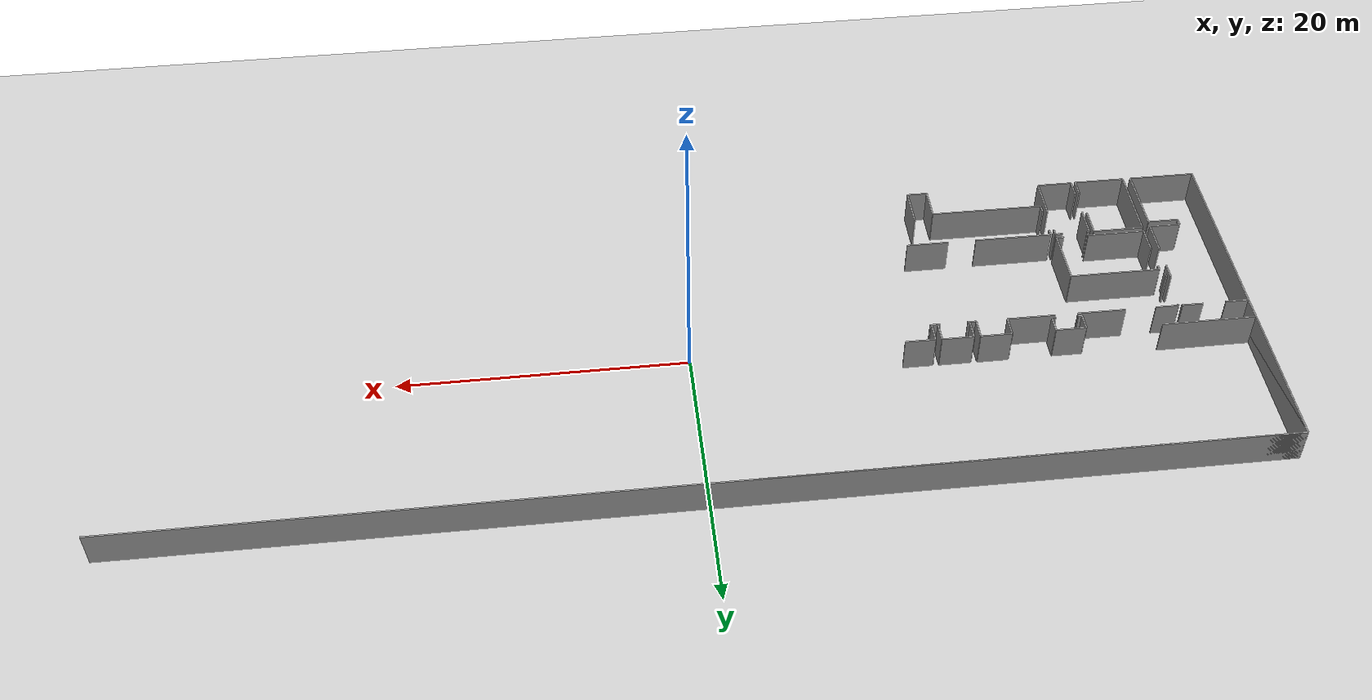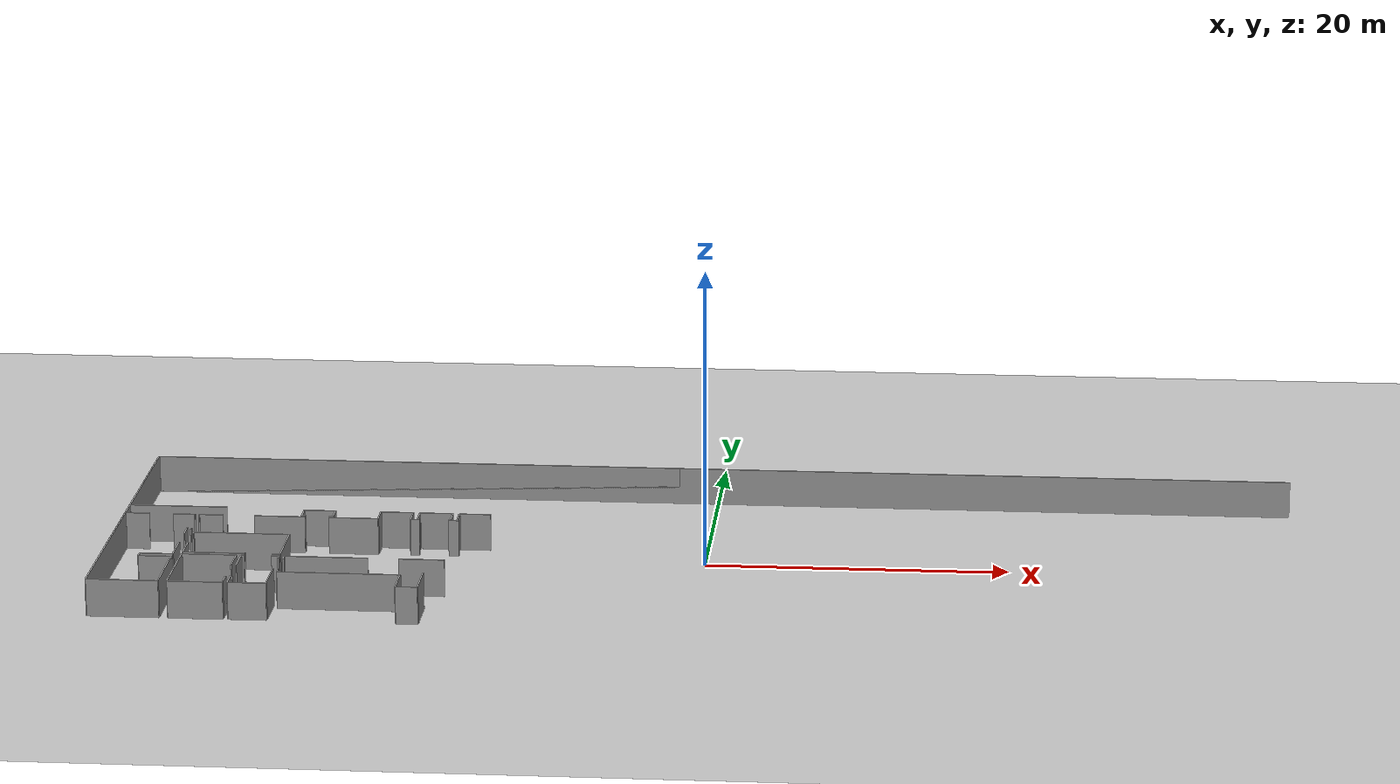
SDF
<sdf version="1.6">
 <world name="default">
  <model name="ground_plane">
   <static>1</static>
   <link name="link">
    <collision name="collision">
     <geometry><plane><normal>0 0 1</normal><size>100 100</size></plane></geometry>
     <surface><friction><ode><mu>100</mu><mu2>50</mu2></ode></friction></surface>
    </collision>
    <visual name="visual">
     <cast_shadows>0</cast_shadows>
     <geometry><plane><normal>0 0 1</normal><size>100 100</size></plane></geometry>
     <material>
      <script><uri>file://media/materials/scripts/gazebo.material</uri><name>Gazebo/Grey</name></script>
     </material>
    </visual>
   </link>
  </model>
  <model name="0510030965_A-40">
   <static>1</static>
   <link name="Wall_0">
    <collision name="Wall_0_Collision">
     <geometry><box><size>10.6242301881 0.1 2.5</size></box></geometry>
     <pose>5.31211509403 0 1.25 0 0 0</pose>
    </collision>
    <visual name="Wall_0_Visual">
     <pose>5.31211509403 0 1.25 0 0 0</pose>
     <geometry><box><size>10.6242301881 0.1 2.5</size></box></geometry>
     <material>
      <script><uri>file://media/materials/scripts/gazebo.material</uri><name>Gazebo/Grey</name></script>
      <ambient>1 1 1 1</ambient>
     </material>
    </visual>
    <pose>0.0 -10.6242301881 0 0 0 1.57079632679</pose>
   </link>
   <link name="Wall_1">
    <collision name="Wall_1_Collision">
     <geometry><box><size>35.9684075527 0.1 2.5</size></box></geometry>
     <pose>17.9842037764 0 1.25 0 0 0</pose>
    </collision>
    <visual name="Wall_1_Visual">
     <pose>17.9842037764 0 1.25 0 0 0</pose>
     <geometry><box><size>35.9684075527 0.1 2.5</size></box></geometry>
     <material>
      <script><uri>file://media/materials/scripts/gazebo.material</uri><name>Gazebo/Grey</name></script>
      <ambient>1 1 1 1</ambient>
     </material>
    </visual>
   </link>
   <link name="Wall_5">
    <collision name="Wall_5_Collision">
     <geometry><box><size>6.55112685435 0.1 2.5</size></box></geometry>
     <pose>3.27556342718 0 1.25 0 0 0</pose>
    </collision>
    <visual name="Wall_5_Visual">
     <pose>3.27556342718 0 1.25 0 0 0</pose>
     <geometry><box><size>6.55112685435 0.1 2.5</size></box></geometry>
     <material>
      <script><uri>file://media/materials/scripts/gazebo.material</uri><name>Gazebo/Grey</name></script>
      <ambient>1 1 1 1</ambient>
     </material>
    </visual>
    <pose>6.55111551306 -10.6120401762 0 0 0 -3.13973190213</pose>
   </link>
   <link name="Wall_6">
    <collision name="Wall_6_Collision">
     <geometry><box><size>4.66648889566 0.1 2.5</size></box></geometry>
     <pose>2.33324444783 0 1.25 0 0 0</pose>
    </collision>
    <visual name="Wall_6_Visual">
     <pose>2.33324444783 0 1.25 0 0 0</pose>
     <geometry><box><size>4.66648889566 0.1 2.5</size></box></geometry>
     <material>
      <script><uri>file://media/materials/scripts/gazebo.material</uri><name>Gazebo/Grey</name></script>
      <ambient>1 1 1 1</ambient>
     </material>
    </visual>
    <pose>4.66826660572 -25.6908308255 0 0 0 3.14159265359</pose>
   </link>
   <link name="Wall_7">
    <collision name="Wall_7_Collision">
     <geometry><box><size>13.4218378982 0.1 2.5</size></box></geometry>
     <pose>6.71091894912 0 1.25 0 0 0</pose>
    </collision>
    <visual name="Wall_7_Visual">
     <pose>6.71091894912 0 1.25 0 0 0</pose>
     <geometry><box><size>13.4218378982 0.1 2.5</size></box></geometry>
     <material>
      <script><uri>file://media/materials/scripts/gazebo.material</uri><name>Gazebo/Grey</name></script>
      <ambient>1 1 1 1</ambient>
     </material>
    </visual>
    <pose>0.00177771005549 -25.6908308255 0 0 0 1.57079632679</pose>
   </link>
   <link name="Wall_8">
    <collision name="Wall_8_Collision">
     <geometry><box><size>1.61250999962 0.1 2.5</size></box></geometry>
     <pose>0.80625499981 0 1.25 0 0 0</pose>
    </collision>
    <visual name="Wall_8_Visual">
     <pose>0.80625499981 0 1.25 0 0 0</pose>
     <geometry><box><size>1.61250999962 0.1 2.5</size></box></geometry>
     <material>
      <script><uri>file://media/materials/scripts/gazebo.material</uri><name>Gazebo/Grey</name></script>
      <ambient>1 1 1 1</ambient>
     </material>
    </visual>
    <pose>0.00177771005549 -12.2689929273 0 0 0 0.0</pose>
   </link>
   <link name="Wall_9">
    <collision name="Wall_9_Collision">
     <geometry><box><size>1.44921463309 0.1 2.5</size></box></geometry>
     <pose>0.724607316547 0 1.25 0 0 0</pose>
    </collision>
    <visual name="Wall_9_Visual">
     <pose>0.724607316547 0 1.25 0 0 0</pose>
     <geometry><box><size>1.44921463309 0.1 2.5</size></box></geometry>
     <material>
      <script><uri>file://media/materials/scripts/gazebo.material</uri><name>Gazebo/Grey</name></script>
      <ambient>1 1 1 1</ambient>
     </material>
    </visual>
    <pose>3.21714728328 -12.2689929273 0 0 0 0.0</pose>
   </link>
   <link name="Wall_10">
    <collision name="Wall_10_Collision">
     <geometry><box><size>0.0816476832629 0.1 2.5</size></box></geometry>
     <pose>0.0408238416314 0 1.25 0 0 0</pose>
    </collision>
    <visual name="Wall_10_Visual">
     <pose>0.0408238416314 0 1.25 0 0 0</pose>
     <geometry><box><size>0.0816476832629 0.1 2.5</size></box></geometry>
     <material>
      <script><uri>file://media/materials/scripts/gazebo.material</uri><name>Gazebo/Grey</name></script>
      <ambient>1 1 1 1</ambient>
     </material>
    </visual>
    <pose>4.66636191637 -12.2689929273 0 0 0 -1.57079632679</pose>
   </link>
   <link name="Wall_11">
    <collision name="Wall_11_Collision">
     <geometry><box><size>1.176082181 0.1 2.5</size></box></geometry>
     <pose>0.588041090498 0 1.25 0 0 0</pose>
    </collision>
    <visual name="Wall_11_Visual">
     <pose>0.588041090498 0 1.25 0 0 0</pose>
     <geometry><box><size>1.176082181 0.1 2.5</size></box></geometry>
     <material>
      <script><uri>file://media/materials/scripts/gazebo.material</uri><name>Gazebo/Grey</name></script>
      <ambient>1 1 1 1</ambient>
     </material>
    </visual>
    <pose>4.66636191637 -15.1072340101 0 0 0 -1.57079632679</pose>
   </link>
   <link name="Wall_12">
    <collision name="Wall_12_Collision">
     <geometry><box><size>2.33718080581 0.1 2.5</size></box></geometry>
     <pose>1.16859040291 0 1.25 0 0 0</pose>
    </collision>
    <visual name="Wall_12_Visual">
     <pose>1.16859040291 0 1.25 0 0 0</pose>
     <geometry><box><size>2.33718080581 0.1 2.5</size></box></geometry>
     <material>
      <script><uri>file://media/materials/scripts/gazebo.material</uri><name>Gazebo/Grey</name></script>
      <ambient>1 1 1 1</ambient>
     </material>
    </visual>
    <pose>4.66636191637 -18.0428682082 0 0 0 -1.57079632679</pose>
   </link>
   <link name="Wall_13">
    <collision name="Wall_13_Collision">
     <geometry><box><size>2.16448897185 0.1 2.5</size></box></geometry>
     <pose>1.08224448592 0 1.25 0 0 0</pose>
    </collision>
    <visual name="Wall_13_Visual">
     <pose>1.08224448592 0 1.25 0 0 0</pose>
     <geometry><box><size>2.16448897185 0.1 2.5</size></box></geometry>
     <material>
      <script><uri>file://media/materials/scripts/gazebo.material</uri><name>Gazebo/Grey</name></script>
      <ambient>1 1 1 1</ambient>
     </material>
    </visual>
    <pose>4.66636191637 -20.380049014 0 0 0 3.14159265359</pose>
   </link>
   <link name="Wall_14">
    <collision name="Wall_14_Collision">
     <geometry><box><size>0.501060277069 0.1 2.5</size></box></geometry>
     <pose>0.250530138534 0 1.25 0 0 0</pose>
    </collision>
    <visual name="Wall_14_Visual">
     <pose>0.250530138534 0 1.25 0 0 0</pose>
     <geometry><box><size>0.501060277069 0.1 2.5</size></box></geometry>
     <material>
      <script><uri>file://media/materials/scripts/gazebo.material</uri><name>Gazebo/Grey</name></script>
      <ambient>1 1 1 1</ambient>
     </material>
    </visual>
    <pose>2.50187294452 -20.380049014 0 0 0 -1.57079632679</pose>
   </link>
   <link name="Wall_15">
    <collision name="Wall_15_Collision">
     <geometry><box><size>2.14569603698 0.1 2.5</size></box></geometry>
     <pose>1.07284801849 0 1.25 0 0 0</pose>
    </collision>
    <visual name="Wall_15_Visual">
     <pose>1.07284801849 0 1.25 0 0 0</pose>
     <geometry><box><size>2.14569603698 0.1 2.5</size></box></geometry>
     <material>
      <script><uri>file://media/materials/scripts/gazebo.material</uri><name>Gazebo/Grey</name></script>
      <ambient>1 1 1 1</ambient>
     </material>
    </visual>
    <pose>2.50187294452 -20.8811092911 0 0 0 0.0</pose>
   </link>
   <link name="Wall_16">
    <collision name="Wall_16_Collision">
     <geometry><box><size>4.80976606815 0.1 2.5</size></box></geometry>
     <pose>2.40488303407 0 1.25 0 0 0</pose>
    </collision>
    <visual name="Wall_16_Visual">
     <pose>2.40488303407 0 1.25 0 0 0</pose>
     <geometry><box><size>4.80976606815 0.1 2.5</size></box></geometry>
     <material>
      <script><uri>file://media/materials/scripts/gazebo.material</uri><name>Gazebo/Grey</name></script>
      <ambient>1 1 1 1</ambient>
     </material>
    </visual>
    <pose>4.6475689815 -20.8811092911 0 0 0 -1.56649306385</pose>
   </link>
   <link name="Wall_17">
    <collision name="Wall_17_Collision">
     <geometry><box><size>0.520615087679 0.1 2.5</size></box></geometry>
     <pose>0.26030754384 0 1.25 0 0 0</pose>
    </collision>
    <visual name="Wall_17_Visual">
     <pose>0.26030754384 0 1.25 0 0 0</pose>
     <geometry><box><size>0.520615087679 0.1 2.5</size></box></geometry>
     <material>
      <script><uri>file://media/materials/scripts/gazebo.material</uri><name>Gazebo/Grey</name></script>
      <ambient>1 1 1 1</ambient>
     </material>
    </visual>
    <pose>11.620128757 -19.9502241184 0 0 0 3.14159265359</pose>
   </link>
   <link name="Wall_18">
    <collision name="Wall_18_Collision">
     <geometry><box><size>4.08136832883 0.1 2.5</size></box></geometry>
     <pose>2.04068416441 0 1.25 0 0 0</pose>
    </collision>
    <visual name="Wall_18_Visual">
     <pose>2.04068416441 0 1.25 0 0 0</pose>
     <geometry><box><size>4.08136832883 0.1 2.5</size></box></geometry>
     <material>
      <script><uri>file://media/materials/scripts/gazebo.material</uri><name>Gazebo/Grey</name></script>
      <ambient>1 1 1 1</ambient>
     </material>
    </visual>
    <pose>9.3345015428 -19.9502241184 0 0 0 3.14159265359</pose>
   </link>
   <link name="Wall_19">
    <collision name="Wall_19_Collision">
     <geometry><box><size>1.89656267063 0.1 2.5</size></box></geometry>
     <pose>0.948281335314 0 1.25 0 0 0</pose>
    </collision>
    <visual name="Wall_19_Visual">
     <pose>0.948281335314 0 1.25 0 0 0</pose>
     <geometry><box><size>1.89656267063 0.1 2.5</size></box></geometry>
     <material>
      <script><uri>file://media/materials/scripts/gazebo.material</uri><name>Gazebo/Grey</name></script>
      <ambient>1 1 1 1</ambient>
     </material>
    </visual>
    <pose>5.25313321397 -19.9502241184 0 0 0 1.57079632679</pose>
   </link>
   <link name="Wall_20">
    <collision name="Wall_20_Collision">
     <geometry><box><size>0.358081596892 0.1 2.5</size></box></geometry>
     <pose>0.179040798446 0 1.25 0 0 0</pose>
    </collision>
    <visual name="Wall_20_Visual">
     <pose>0.179040798446 0 1.25 0 0 0</pose>
     <geometry><box><size>0.358081596892 0.1 2.5</size></box></geometry>
     <material>
      <script><uri>file://media/materials/scripts/gazebo.material</uri><name>Gazebo/Grey</name></script>
      <ambient>1 1 1 1</ambient>
     </material>
    </visual>
    <pose>5.25313321397 -16.2929666171 0 0 0 1.57079632679</pose>
   </link>
   <link name="Wall_21">
    <collision name="Wall_21_Collision">
     <geometry><box><size>6.32928269399 0.1 2.5</size></box></geometry>
     <pose>3.164641347 0 1.25 0 0 0</pose>
    </collision>
    <visual name="Wall_21_Visual">
     <pose>3.164641347 0 1.25 0 0 0</pose>
     <geometry><box><size>6.32928269399 0.1 2.5</size></box></geometry>
     <material>
      <script><uri>file://media/materials/scripts/gazebo.material</uri><name>Gazebo/Grey</name></script>
      <ambient>1 1 1 1</ambient>
     </material>
    </visual>
    <pose>5.25313321397 -15.9348850203 0 0 0 0.0</pose>
   </link>
   <link name="Wall_22">
    <collision name="Wall_22_Collision">
     <geometry><box><size>4.01551619751 0.1 2.5</size></box></geometry>
     <pose>2.00775809875 0 1.25 0 0 0</pose>
    </collision>
    <visual name="Wall_22_Visual">
     <pose>2.00775809875 0 1.25 0 0 0</pose>
     <geometry><box><size>4.01551619751 0.1 2.5</size></box></geometry>
     <material>
      <script><uri>file://media/materials/scripts/gazebo.material</uri><name>Gazebo/Grey</name></script>
      <ambient>1 1 1 1</ambient>
     </material>
    </visual>
    <pose>11.582415908 -15.9348850203 0 0 0 -1.56140440765</pose>
   </link>
   <link name="Wall_23">
    <collision name="Wall_23_Collision">
     <geometry><box><size>1.26268205656 0.1 2.5</size></box></geometry>
     <pose>0.631341028278 0 1.25 0 0 0</pose>
    </collision>
    <visual name="Wall_23_Visual">
     <pose>0.631341028278 0 1.25 0 0 0</pose>
     <geometry><box><size>1.26268205656 0.1 2.5</size></box></geometry>
     <material>
      <script><uri>file://media/materials/scripts/gazebo.material</uri><name>Gazebo/Grey</name></script>
      <ambient>1 1 1 1</ambient>
     </material>
    </visual>
    <pose>9.13057280358 -25.669117367 0 0 0 1.57079632679</pose>
   </link>
   <link name="Wall_24">
    <collision name="Wall_24_Collision">
     <geometry><box><size>2.12906175003 0.1 2.5</size></box></geometry>
     <pose>1.06453087501 0 1.25 0 0 0</pose>
    </collision>
    <visual name="Wall_24_Visual">
     <pose>1.06453087501 0 1.25 0 0 0</pose>
     <geometry><box><size>2.12906175003 0.1 2.5</size></box></geometry>
     <material>
      <script><uri>file://media/materials/scripts/gazebo.material</uri><name>Gazebo/Grey</name></script>
      <ambient>1 1 1 1</ambient>
     </material>
    </visual>
    <pose>9.13057280358 -22.4461290364 0 0 0 1.57079632679</pose>
   </link>
   <link name="Wall_25">
    <collision name="Wall_25_Collision">
     <geometry><box><size>0.179548715604 0.1 2.5</size></box></geometry>
     <pose>0.0897743578022 0 1.25 0 0 0</pose>
    </collision>
    <visual name="Wall_25_Visual">
     <pose>0.0897743578022 0 1.25 0 0 0</pose>
     <geometry><box><size>0.179548715604 0.1 2.5</size></box></geometry>
     <material>
      <script><uri>file://media/materials/scripts/gazebo.material</uri><name>Gazebo/Grey</name></script>
      <ambient>1 1 1 1</ambient>
     </material>
    </visual>
    <pose>9.13057280358 -20.3170672863 0 0 0 0.0</pose>
   </link>
   <link name="Wall_26">
    <collision name="Wall_26_Collision">
     <geometry><box><size>0.504996635049 0.1 2.5</size></box></geometry>
     <pose>0.252498317524 0 1.25 0 0 0</pose>
    </collision>
    <visual name="Wall_26_Visual">
     <pose>0.252498317524 0 1.25 0 0 0</pose>
     <geometry><box><size>0.504996635049 0.1 2.5</size></box></geometry>
     <material>
      <script><uri>file://media/materials/scripts/gazebo.material</uri><name>Gazebo/Grey</name></script>
      <ambient>1 1 1 1</ambient>
     </material>
    </visual>
    <pose>11.1066245095 -20.3170672863 0 0 0 0.0</pose>
   </link>
   <link name="Wall_27">
    <collision name="Wall_27_Collision">
     <geometry><box><size>0.478330984216 0.1 2.5</size></box></geometry>
     <pose>0.239165492108 0 1.25 0 0 0</pose>
    </collision>
    <visual name="Wall_27_Visual">
     <pose>0.239165492108 0 1.25 0 0 0</pose>
     <geometry><box><size>0.478330984216 0.1 2.5</size></box></geometry>
     <material>
      <script><uri>file://media/materials/scripts/gazebo.material</uri><name>Gazebo/Grey</name></script>
      <ambient>1 1 1 1</ambient>
     </material>
    </visual>
    <pose>11.6116211446 -20.3170672863 0 0 0 -1.57079632679</pose>
   </link>
   <link name="Wall_28">
    <collision name="Wall_28_Collision">
     <geometry><box><size>2.89792134903 0.1 2.5</size></box></geometry>
     <pose>1.44896067451 0 1.25 0 0 0</pose>
    </collision>
    <visual name="Wall_28_Visual">
     <pose>1.44896067451 0 1.25 0 0 0</pose>
     <geometry><box><size>2.89792134903 0.1 2.5</size></box></geometry>
     <material>
      <script><uri>file://media/materials/scripts/gazebo.material</uri><name>Gazebo/Grey</name></script>
      <ambient>1 1 1 1</ambient>
     </material>
    </visual>
    <pose>11.6116211446 -22.765101012 0 0 0 -1.57079632679</pose>
   </link>
   <link name="Wall_29">
    <collision name="Wall_29_Collision">
     <geometry><box><size>2.48105582758 0.1 2.5</size></box></geometry>
     <pose>1.24052791379 0 1.25 0 0 0</pose>
    </collision>
    <visual name="Wall_29_Visual">
     <pose>1.24052791379 0 1.25 0 0 0</pose>
     <geometry><box><size>2.48105582758 0.1 2.5</size></box></geometry>
     <material>
      <script><uri>file://media/materials/scripts/gazebo.material</uri><name>Gazebo/Grey</name></script>
      <ambient>1 1 1 1</ambient>
     </material>
    </visual>
    <pose>11.6116211446 -25.6630223611 0 0 0 -3.13913603332</pose>
   </link>
   <link name="Wall_30">
    <collision name="Wall_30_Collision">
     <geometry><box><size>3.57345117011 0.1 2.5</size></box></geometry>
     <pose>1.78672558506 0 1.25 0 0 0</pose>
    </collision>
    <visual name="Wall_30_Visual">
     <pose>1.78672558506 0 1.25 0 0 0</pose>
     <geometry><box><size>3.57345117011 0.1 2.5</size></box></geometry>
     <material>
      <script><uri>file://media/materials/scripts/gazebo.material</uri><name>Gazebo/Grey</name></script>
      <ambient>1 1 1 1</ambient>
     </material>
    </visual>
    <pose>8.81375947583 -25.6900689498 0 0 0 3.14159265359</pose>
   </link>
   <link name="Wall_31">
    <collision name="Wall_31_Collision">
     <geometry><box><size>5.36817645042 0.1 2.5</size></box></geometry>
     <pose>2.68408822521 0 1.25 0 0 0</pose>
    </collision>
    <visual name="Wall_31_Visual">
     <pose>2.68408822521 0 1.25 0 0 0</pose>
     <geometry><box><size>5.36817645042 0.1 2.5</size></box></geometry>
     <material>
      <script><uri>file://media/materials/scripts/gazebo.material</uri><name>Gazebo/Grey</name></script>
      <ambient>1 1 1 1</ambient>
     </material>
    </visual>
    <pose>5.24030830572 -25.6900689498 0 0 0 1.57079632679</pose>
   </link>
   <link name="Wall_32">
    <collision name="Wall_32_Collision">
     <geometry><box><size>3.57459398372 0.1 2.5</size></box></geometry>
     <pose>1.78729699186 0 1.25 0 0 0</pose>
    </collision>
    <visual name="Wall_32_Visual">
     <pose>1.78729699186 0 1.25 0 0 0</pose>
     <geometry><box><size>3.57459398372 0.1 2.5</size></box></geometry>
     <material>
      <script><uri>file://media/materials/scripts/gazebo.material</uri><name>Gazebo/Grey</name></script>
      <ambient>1 1 1 1</ambient>
     </material>
    </visual>
    <pose>5.24030830572 -20.3218924993 0 0 0 0.0</pose>
   </link>
   <link name="Wall_33">
    <collision name="Wall_33_Collision">
     <geometry><box><size>1.98862265564 0.1 2.5</size></box></geometry>
     <pose>0.994311327822 0 1.25 0 0 0</pose>
    </collision>
    <visual name="Wall_33_Visual">
     <pose>0.994311327822 0 1.25 0 0 0</pose>
     <geometry><box><size>1.98862265564 0.1 2.5</size></box></geometry>
     <material>
      <script><uri>file://media/materials/scripts/gazebo.material</uri><name>Gazebo/Grey</name></script>
      <ambient>1 1 1 1</ambient>
     </material>
    </visual>
    <pose>8.81490228944 -20.3218924993 0 0 0 -1.57079632679</pose>
   </link>
   <link name="Wall_34">
    <collision name="Wall_34_Collision">
     <geometry><box><size>1.21125598336 0.1 2.5</size></box></geometry>
     <pose>0.605627991678 0 1.25 0 0 0</pose>
    </collision>
    <visual name="Wall_34_Visual">
     <pose>0.605627991678 0 1.25 0 0 0</pose>
     <geometry><box><size>1.21125598336 0.1 2.5</size></box></geometry>
     <material>
      <script><uri>file://media/materials/scripts/gazebo.material</uri><name>Gazebo/Grey</name></script>
      <ambient>1 1 1 1</ambient>
     </material>
    </visual>
    <pose>8.81490228944 -24.4788135055 0 0 0 -1.57173982164</pose>
   </link>
   <link name="Wall_35">
    <collision name="Wall_35_Collision">
     <geometry><box><size>0.609500590454 0.1 2.5</size></box></geometry>
     <pose>0.304750295227 0 1.25 0 0 0</pose>
    </collision>
    <visual name="Wall_35_Visual">
     <pose>0.304750295227 0 1.25 0 0 0</pose>
     <geometry><box><size>0.609500590454 0.1 2.5</size></box></geometry>
     <material>
      <script><uri>file://media/materials/scripts/gazebo.material</uri><name>Gazebo/Grey</name></script>
      <ambient>1 1 1 1</ambient>
     </material>
    </visual>
    <pose>11.9530684545 -23.3941564131 0 0 0 1.57079632679</pose>
   </link>
   <link name="Wall_36">
    <collision name="Wall_36_Collision">
     <geometry><box><size>0.496362043351 0.1 2.5</size></box></geometry>
     <pose>0.248181021675 0 1.25 0 0 0</pose>
    </collision>
    <visual name="Wall_36_Visual">
     <pose>0.248181021675 0 1.25 0 0 0</pose>
     <geometry><box><size>0.496362043351 0.1 2.5</size></box></geometry>
     <material>
      <script><uri>file://media/materials/scripts/gazebo.material</uri><name>Gazebo/Grey</name></script>
      <ambient>1 1 1 1</ambient>
     </material>
    </visual>
    <pose>11.9530684545 -20.808731096 0 0 0 1.57079632679</pose>
   </link>
   <link name="Wall_37">
    <collision name="Wall_37_Collision">
     <geometry><box><size>5.46277602123 0.1 2.5</size></box></geometry>
     <pose>2.73138801062 0 1.25 0 0 0</pose>
    </collision>
    <visual name="Wall_37_Visual">
     <pose>2.73138801062 0 1.25 0 0 0</pose>
     <geometry><box><size>5.46277602123 0.1 2.5</size></box></geometry>
     <material>
      <script><uri>file://media/materials/scripts/gazebo.material</uri><name>Gazebo/Grey</name></script>
      <ambient>1 1 1 1</ambient>
     </material>
    </visual>
    <pose>11.9530684545 -20.3123690526 0 0 0 0.0</pose>
   </link>
   <link name="Wall_38">
    <collision name="Wall_38_Collision">
     <geometry><box><size>2.97360100568 0.1 2.5</size></box></geometry>
     <pose>1.48680050284 0 1.25 0 0 0</pose>
    </collision>
    <visual name="Wall_38_Visual">
     <pose>1.48680050284 0 1.25 0 0 0</pose>
     <geometry><box><size>2.97360100568 0.1 2.5</size></box></geometry>
     <material>
      <script><uri>file://media/materials/scripts/gazebo.material</uri><name>Gazebo/Grey</name></script>
      <ambient>1 1 1 1</ambient>
     </material>
    </visual>
    <pose>19.4082765101 -20.3123690526 0 0 0 0.0</pose>
   </link>
   <link name="Wall_43">
    <collision name="Wall_43_Collision">
     <geometry><box><size>2.8059883433 0.1 2.5</size></box></geometry>
     <pose>1.40299417165 0 1.25 0 0 0</pose>
    </collision>
    <visual name="Wall_43_Visual">
     <pose>1.40299417165 0 1.25 0 0 0</pose>
     <geometry><box><size>2.8059883433 0.1 2.5</size></box></geometry>
     <material>
      <script><uri>file://media/materials/scripts/gazebo.material</uri><name>Gazebo/Grey</name></script>
      <ambient>1 1 1 1</ambient>
     </material>
    </visual>
    <pose>21.3290922251 -22.8848424822 0 0 0 -1.57079632679</pose>
   </link>
   <link name="Wall_44">
    <collision name="Wall_44_Collision">
     <geometry><box><size>1.4122636598 0.1 2.5</size></box></geometry>
     <pose>0.706131829899 0 1.25 0 0 0</pose>
    </collision>
    <visual name="Wall_44_Visual">
     <pose>0.706131829899 0 1.25 0 0 0</pose>
     <geometry><box><size>1.4122636598 0.1 2.5</size></box></geometry>
     <material>
      <script><uri>file://media/materials/scripts/gazebo.material</uri><name>Gazebo/Grey</name></script>
      <ambient>1 1 1 1</ambient>
     </material>
    </visual>
    <pose>21.3290922251 -25.6908308255 0 0 0 3.14159265359</pose>
   </link>
   <link name="Wall_45">
    <collision name="Wall_45_Collision">
     <geometry><box><size>2.28004012546 0.1 2.5</size></box></geometry>
     <pose>1.14002006273 0 1.25 0 0 0</pose>
    </collision>
    <visual name="Wall_45_Visual">
     <pose>1.14002006273 0 1.25 0 0 0</pose>
     <geometry><box><size>2.28004012546 0.1 2.5</size></box></geometry>
     <material>
      <script><uri>file://media/materials/scripts/gazebo.material</uri><name>Gazebo/Grey</name></script>
      <ambient>1 1 1 1</ambient>
     </material>
    </visual>
    <pose>19.9168285653 -25.6908308255 0 0 0 1.57079632679</pose>
   </link>
   <link name="Wall_46">
    <collision name="Wall_46_Collision">
     <geometry><box><size>7.96377748312 0.1 2.5</size></box></geometry>
     <pose>3.98188874156 0 1.25 0 0 0</pose>
    </collision>
    <visual name="Wall_46_Visual">
     <pose>3.98188874156 0 1.25 0 0 0</pose>
     <geometry><box><size>7.96377748312 0.1 2.5</size></box></geometry>
     <material>
      <script><uri>file://media/materials/scripts/gazebo.material</uri><name>Gazebo/Grey</name></script>
      <ambient>1 1 1 1</ambient>
     </material>
    </visual>
    <pose>19.9168285653 -23.4107907 0 0 0 3.13950390876</pose>
   </link>
   <link name="Wall_59">
    <collision name="Wall_59_Collision">
     <geometry><box><size>0.265259736137 0.1 2.5</size></box></geometry>
     <pose>0.132629868069 0 1.25 0 0 0</pose>
    </collision>
    <visual name="Wall_59_Visual">
     <pose>0.132629868069 0 1.25 0 0 0</pose>
     <geometry><box><size>0.265259736137 0.1 2.5</size></box></geometry>
     <material>
      <script><uri>file://media/materials/scripts/gazebo.material</uri><name>Gazebo/Grey</name></script>
      <ambient>1 1 1 1</ambient>
     </material>
    </visual>
    <pose>4.95765240689 -15.3914136604 0 0 0 1.57079632679</pose>
   </link>
   <link name="Wall_60">
    <collision name="Wall_60_Collision">
     <geometry><box><size>0.100186659556 0.1 2.5</size></box></geometry>
     <pose>0.0500933297779 0 1.25 0 0 0</pose>
    </collision>
    <visual name="Wall_60_Visual">
     <pose>0.0500933297779 0 1.25 0 0 0</pose>
     <geometry><box><size>0.100186659556 0.1 2.5</size></box></geometry>
     <material>
      <script><uri>file://media/materials/scripts/gazebo.material</uri><name>Gazebo/Grey</name></script>
      <ambient>1 1 1 1</ambient>
     </material>
    </visual>
    <pose>4.95765240689 -12.3733699034 0 0 0 1.57079632679</pose>
   </link>
   <link name="Wall_61">
    <collision name="Wall_61_Collision">
     <geometry><box><size>1.58774903813 0.1 2.5</size></box></geometry>
     <pose>0.793874519066 0 1.25 0 0 0</pose>
    </collision>
    <visual name="Wall_61_Visual">
     <pose>0.793874519066 0 1.25 0 0 0</pose>
     <geometry><box><size>1.58774903813 0.1 2.5</size></box></geometry>
     <material>
      <script><uri>file://media/materials/scripts/gazebo.material</uri><name>Gazebo/Grey</name></script>
      <ambient>1 1 1 1</ambient>
     </material>
    </visual>
    <pose>4.95765240689 -12.2731832438 0 0 0 0.0</pose>
   </link>
   <link name="Wall_62">
    <collision name="Wall_62_Collision">
     <geometry><box><size>3.37498254035 0.1 2.5</size></box></geometry>
     <pose>1.68749127017 0 1.25 0 0 0</pose>
    </collision>
    <visual name="Wall_62_Visual">
     <pose>1.68749127017 0 1.25 0 0 0</pose>
     <geometry><box><size>3.37498254035 0.1 2.5</size></box></geometry>
     <material>
      <script><uri>file://media/materials/scripts/gazebo.material</uri><name>Gazebo/Grey</name></script>
      <ambient>1 1 1 1</ambient>
     </material>
    </visual>
    <pose>8.6653206862 -12.2731832438 0 0 0 0.0</pose>
   </link>
   <link name="Wall_63">
    <collision name="Wall_63_Collision">
     <geometry><box><size>3.30349320026 0.1 2.5</size></box></geometry>
     <pose>1.65174660013 0 1.25 0 0 0</pose>
    </collision>
    <visual name="Wall_63_Visual">
     <pose>1.65174660013 0 1.25 0 0 0</pose>
     <geometry><box><size>3.30349320026 0.1 2.5</size></box></geometry>
     <material>
      <script><uri>file://media/materials/scripts/gazebo.material</uri><name>Gazebo/Grey</name></script>
      <ambient>1 1 1 1</ambient>
     </material>
    </visual>
    <pose>13.6239889274 -12.2731832438 0 0 0 0.0</pose>
   </link>
   <link name="Wall_64">
    <collision name="Wall_64_Collision">
     <geometry><box><size>1.41861262428 0.1 2.5</size></box></geometry>
     <pose>0.70930631214 0 1.25 0 0 0</pose>
    </collision>
    <visual name="Wall_64_Visual">
     <pose>0.70930631214 0 1.25 0 0 0</pose>
     <geometry><box><size>1.41861262428 0.1 2.5</size></box></geometry>
     <material>
      <script><uri>file://media/materials/scripts/gazebo.material</uri><name>Gazebo/Grey</name></script>
      <ambient>1 1 1 1</ambient>
     </material>
    </visual>
    <pose>16.9274821277 -12.2731832438 0 0 0 1.57079632679</pose>
   </link>
   <link name="Wall_65">
    <collision name="Wall_65_Collision">
     <geometry><box><size>2.16982210202 0.1 2.5</size></box></geometry>
     <pose>1.08491105101 0 1.25 0 0 0</pose>
    </collision>
    <visual name="Wall_65_Visual">
     <pose>1.08491105101 0 1.25 0 0 0</pose>
     <geometry><box><size>2.16982210202 0.1 2.5</size></box></geometry>
     <material>
      <script><uri>file://media/materials/scripts/gazebo.material</uri><name>Gazebo/Grey</name></script>
      <ambient>1 1 1 1</ambient>
     </material>
    </visual>
    <pose>16.9274821277 -10.8545706195 0 0 0 0.0</pose>
   </link>
   <link name="Wall_66">
    <collision name="Wall_66_Collision">
     <geometry><box><size>1.4306756568 0.1 2.5</size></box></geometry>
     <pose>0.7153378284 0 1.25 0 0 0</pose>
    </collision>
    <visual name="Wall_66_Visual">
     <pose>0.7153378284 0 1.25 0 0 0</pose>
     <geometry><box><size>1.4306756568 0.1 2.5</size></box></geometry>
     <material>
      <script><uri>file://media/materials/scripts/gazebo.material</uri><name>Gazebo/Grey</name></script>
      <ambient>1 1 1 1</ambient>
     </material>
    </visual>
    <pose>19.0973042297 -10.8545706195 0 0 0 -1.57079632679</pose>
   </link>
   <link name="Wall_67">
    <collision name="Wall_67_Collision">
     <geometry><box><size>0.595405889299 0.1 2.5</size></box></geometry>
     <pose>0.29770294465 0 1.25 0 0 0</pose>
    </collision>
    <visual name="Wall_67_Visual">
     <pose>0.29770294465 0 1.25 0 0 0</pose>
     <geometry><box><size>0.595405889299 0.1 2.5</size></box></geometry>
     <material>
      <script><uri>file://media/materials/scripts/gazebo.material</uri><name>Gazebo/Grey</name></script>
      <ambient>1 1 1 1</ambient>
     </material>
    </visual>
    <pose>19.0973042297 -12.2852462763 0 0 0 0.0</pose>
   </link>
   <link name="Wall_68">
    <collision name="Wall_68_Collision">
     <geometry><box><size>0.684672329943 0.1 2.5</size></box></geometry>
     <pose>0.342336164971 0 1.25 0 0 0</pose>
    </collision>
    <visual name="Wall_68_Visual">
     <pose>0.342336164971 0 1.25 0 0 0</pose>
     <geometry><box><size>0.684672329943 0.1 2.5</size></box></geometry>
     <material>
      <script><uri>file://media/materials/scripts/gazebo.material</uri><name>Gazebo/Grey</name></script>
      <ambient>1 1 1 1</ambient>
     </material>
    </visual>
    <pose>21.6212715706 -12.2852462763 0 0 0 0.0</pose>
   </link>
   <link name="Wall_82">
    <collision name="Wall_82_Collision">
     <geometry><box><size>1.1661777964 0.1 2.5</size></box></geometry>
     <pose>0.583088898201 0 1.25 0 0 0</pose>
    </collision>
    <visual name="Wall_82_Visual">
     <pose>0.583088898201 0 1.25 0 0 0</pose>
     <geometry><box><size>1.1661777964 0.1 2.5</size></box></geometry>
     <material>
      <script><uri>file://media/materials/scripts/gazebo.material</uri><name>Gazebo/Grey</name></script>
      <ambient>1 1 1 1</ambient>
     </material>
    </visual>
    <pose>11.7943443424 -12.0310337384 0 0 0 1.57079632679</pose>
   </link>
   <link name="Wall_83">
    <collision name="Wall_83_Collision">
     <geometry><box><size>2.0900791081 0.1 2.5</size></box></geometry>
     <pose>1.04503955405 0 1.25 0 0 0</pose>
    </collision>
    <visual name="Wall_83_Visual">
     <pose>1.04503955405 0 1.25 0 0 0</pose>
     <geometry><box><size>2.0900791081 0.1 2.5</size></box></geometry>
     <material>
      <script><uri>file://media/materials/scripts/gazebo.material</uri><name>Gazebo/Grey</name></script>
      <ambient>1 1 1 1</ambient>
     </material>
    </visual>
    <pose>11.7943443424 -10.864855942 0 0 0 0.0</pose>
   </link>
   <link name="Wall_84">
    <collision name="Wall_84_Collision">
     <geometry><box><size>1.17290769875 0.1 2.5</size></box></geometry>
     <pose>0.586453849377 0 1.25 0 0 0</pose>
    </collision>
    <visual name="Wall_84_Visual">
     <pose>0.586453849377 0 1.25 0 0 0</pose>
     <geometry><box><size>1.17290769875 0.1 2.5</size></box></geometry>
     <material>
      <script><uri>file://media/materials/scripts/gazebo.material</uri><name>Gazebo/Grey</name></script>
      <ambient>1 1 1 1</ambient>
     </material>
    </visual>
    <pose>13.8844234505 -10.864855942 0 0 0 -1.57079632679</pose>
   </link>
   <link name="Wall_85">
    <collision name="Wall_85_Collision">
     <geometry><box><size>0.264370881109 0.1 2.5</size></box></geometry>
     <pose>0.132185440555 0 1.25 0 0 0</pose>
    </collision>
    <visual name="Wall_85_Visual">
     <pose>0.132185440555 0 1.25 0 0 0</pose>
     <geometry><box><size>0.264370881109 0.1 2.5</size></box></geometry>
     <material>
      <script><uri>file://media/materials/scripts/gazebo.material</uri><name>Gazebo/Grey</name></script>
      <ambient>1 1 1 1</ambient>
     </material>
    </visual>
    <pose>13.8844234505 -12.0377636408 0 0 0 3.14159265359</pose>
   </link>
   <link name="Wall_86">
    <collision name="Wall_86_Collision">
     <geometry><box><size>0.259252095425 0.1 2.5</size></box></geometry>
     <pose>0.129626047712 0 1.25 0 0 0</pose>
    </collision>
    <visual name="Wall_86_Visual">
     <pose>0.129626047712 0 1.25 0 0 0</pose>
     <geometry><box><size>0.259252095425 0.1 2.5</size></box></geometry>
     <material>
      <script><uri>file://media/materials/scripts/gazebo.material</uri><name>Gazebo/Grey</name></script>
      <ambient>1 1 1 1</ambient>
     </material>
    </visual>
    <pose>12.0535090727 -12.0377636408 0 0 0 3.11563082515</pose>
   </link>
   <link name="Wall_87">
    <collision name="Wall_87_Collision">
     <geometry><box><size>1.32744149429 0.1 2.5</size></box></geometry>
     <pose>0.663720747146 0 1.25 0 0 0</pose>
    </collision>
    <visual name="Wall_87_Visual">
     <pose>0.663720747146 0 1.25 0 0 0</pose>
     <geometry><box><size>1.32744149429 0.1 2.5</size></box></geometry>
     <material>
      <script><uri>file://media/materials/scripts/gazebo.material</uri><name>Gazebo/Grey</name></script>
      <ambient>1 1 1 1</ambient>
     </material>
    </visual>
    <pose>19.54236664 -12.1896308712 0 0 0 1.57079632679</pose>
   </link>
   <link name="Wall_88">
    <collision name="Wall_88_Collision">
     <geometry><box><size>2.21248714335 0.1 2.5</size></box></geometry>
     <pose>1.10624357167 0 1.25 0 0 0</pose>
    </collision>
    <visual name="Wall_88_Visual">
     <pose>1.10624357167 0 1.25 0 0 0</pose>
     <geometry><box><size>2.21248714335 0.1 2.5</size></box></geometry>
     <material>
      <script><uri>file://media/materials/scripts/gazebo.material</uri><name>Gazebo/Grey</name></script>
      <ambient>1 1 1 1</ambient>
     </material>
    </visual>
    <pose>19.54236664 -10.8621893769 0 0 0 0.0</pose>
   </link>
   <link name="Wall_89">
    <collision name="Wall_89_Collision">
     <geometry><box><size>1.34420276053 0.1 2.5</size></box></geometry>
     <pose>0.672101380265 0 1.25 0 0 0</pose>
    </collision>
    <visual name="Wall_89_Visual">
     <pose>0.672101380265 0 1.25 0 0 0</pose>
     <geometry><box><size>1.34420276053 0.1 2.5</size></box></geometry>
     <material>
      <script><uri>file://media/materials/scripts/gazebo.material</uri><name>Gazebo/Grey</name></script>
      <ambient>1 1 1 1</ambient>
     </material>
    </visual>
    <pose>21.7548537833 -10.8621893769 0 0 0 -1.57079632679</pose>
   </link>
   <link name="Wall_90">
    <collision name="Wall_90_Collision">
     <geometry><box><size>0.133582212741 0.1 2.5</size></box></geometry>
     <pose>0.0667911063706 0 1.25 0 0 0</pose>
    </collision>
    <visual name="Wall_90_Visual">
     <pose>0.0667911063706 0 1.25 0 0 0</pose>
     <geometry><box><size>0.133582212741 0.1 2.5</size></box></geometry>
     <material>
      <script><uri>file://media/materials/scripts/gazebo.material</uri><name>Gazebo/Grey</name></script>
      <ambient>1 1 1 1</ambient>
     </material>
    </visual>
    <pose>21.7548537833 -12.2063921374 0 0 0 3.14159265359</pose>
   </link>
   <link name="Wall_91">
    <collision name="Wall_91_Collision">
     <geometry><box><size>0.159480376789 0.1 2.5</size></box></geometry>
     <pose>0.0797401883944 0 1.25 0 0 0</pose>
    </collision>
    <visual name="Wall_91_Visual">
     <pose>0.0797401883944 0 1.25 0 0 0</pose>
     <geometry><box><size>0.159480376789 0.1 2.5</size></box></geometry>
     <material>
      <script><uri>file://media/materials/scripts/gazebo.material</uri><name>Gazebo/Grey</name></script>
      <ambient>1 1 1 1</ambient>
     </material>
    </visual>
    <pose>19.7009637728 -12.2063921374 0 0 0 3.03629896139</pose>
   </link>
   <link name="Wall_92">
    <collision name="Wall_92_Collision">
     <geometry><box><size>1.3359491067 0.1 2.5</size></box></geometry>
     <pose>0.66797455335 0 1.25 0 0 0</pose>
    </collision>
    <visual name="Wall_92_Visual">
     <pose>0.66797455335 0 1.25 0 0 0</pose>
     <geometry><box><size>1.3359491067 0.1 2.5</size></box></geometry>
     <material>
      <script><uri>file://media/materials/scripts/gazebo.material</uri><name>Gazebo/Grey</name></script>
      <ambient>1 1 1 1</ambient>
     </material>
    </visual>
    <pose>22.1835358653 -12.2165504806 0 0 0 1.57079632679</pose>
   </link>
   <link name="Wall_93">
    <collision name="Wall_93_Collision">
     <geometry><box><size>2.09096796313 0.1 2.5</size></box></geometry>
     <pose>1.04548398156 0 1.25 0 0 0</pose>
    </collision>
    <visual name="Wall_93_Visual">
     <pose>1.04548398156 0 1.25 0 0 0</pose>
     <geometry><box><size>2.09096796313 0.1 2.5</size></box></geometry>
     <material>
      <script><uri>file://media/materials/scripts/gazebo.material</uri><name>Gazebo/Grey</name></script>
      <ambient>1 1 1 1</ambient>
     </material>
    </visual>
    <pose>22.1835358653 -10.8806013739 0 0 0 0.0</pose>
   </link>
   <link name="Wall_253">
    <collision name="Wall_253_Collision">
     <geometry><box><size>25.7018780237 0.1 2.5</size></box></geometry>
     <pose>12.8509390118 0 1.25 0 0 0</pose>
    </collision>
    <visual name="Wall_253_Visual">
     <pose>12.8509390118 0 1.25 0 0 0</pose>
     <geometry><box><size>25.7018780237 0.1 2.5</size></box></geometry>
     <material>
      <script><uri>file://media/materials/scripts/gazebo.material</uri><name>Gazebo/Grey</name></script>
      <ambient>1 1 1 1</ambient>
     </material>
    </visual>
    <pose>0.0 -25.7018780237 0 0 0 1.57079632679</pose>
   </link>
   <link name="Wall_254">
    <collision name="Wall_254_Collision">
     <geometry><box><size>77.4684139017 0.1 2.5</size></box></geometry>
     <pose>38.7342069508 0 1.25 0 0 0</pose>
    </collision>
    <visual name="Wall_254_Visual">
     <pose>38.7342069508 0 1.25 0 0 0</pose>
     <geometry><box><size>77.4684139017 0.1 2.5</size></box></geometry>
     <material>
      <script><uri>file://media/materials/scripts/gazebo.material</uri><name>Gazebo/Grey</name></script>
      <ambient>1 1 1 1</ambient>
     </material>
    </visual>
   </link>
   <pose>-38.7 12.8518780237 0 0 0 0</pose>
  </model>
 </world>
</sdf>
